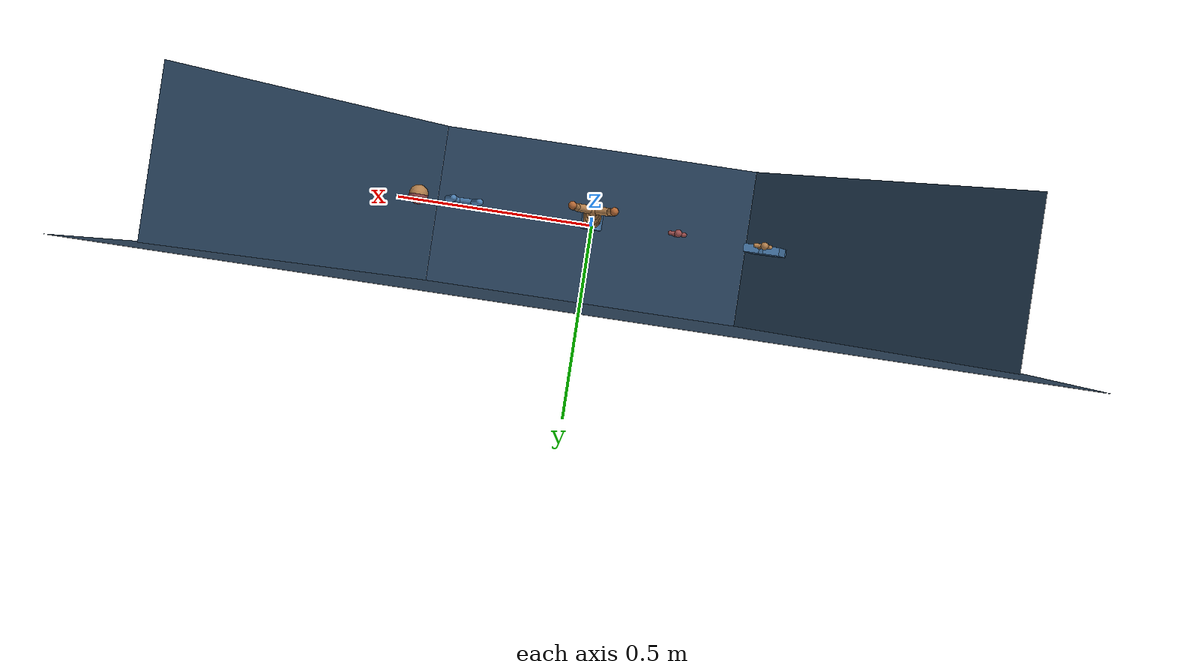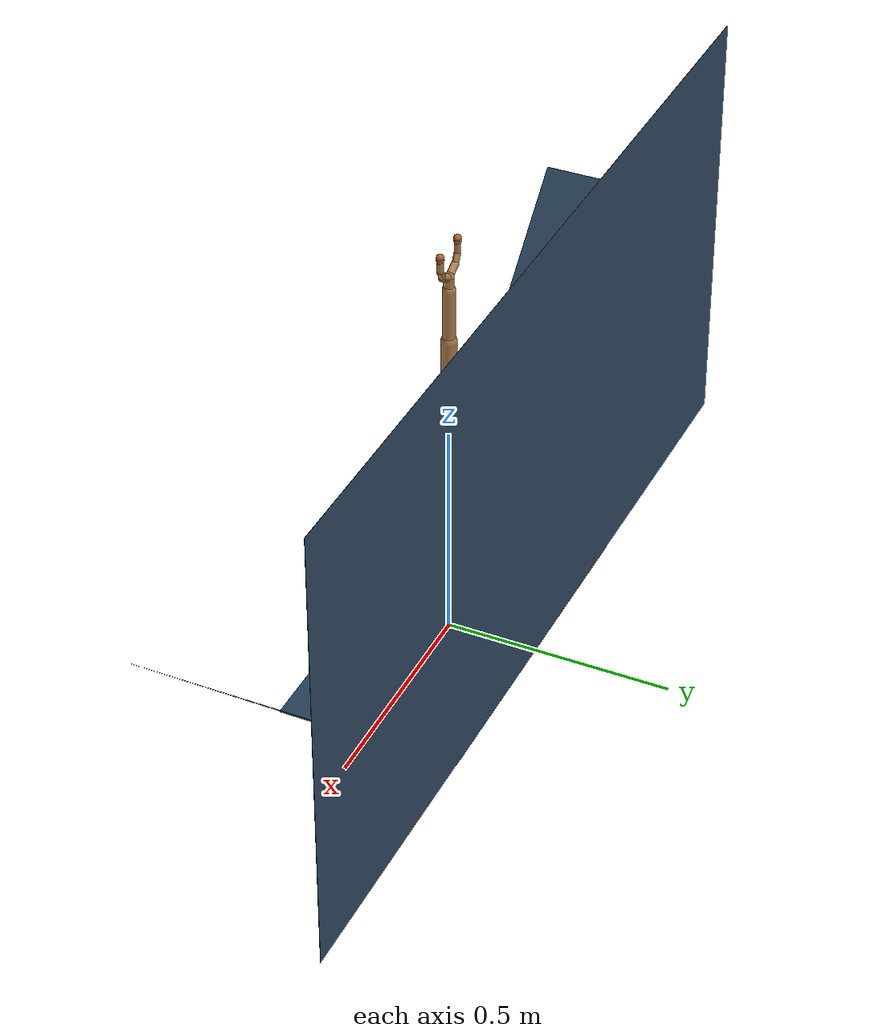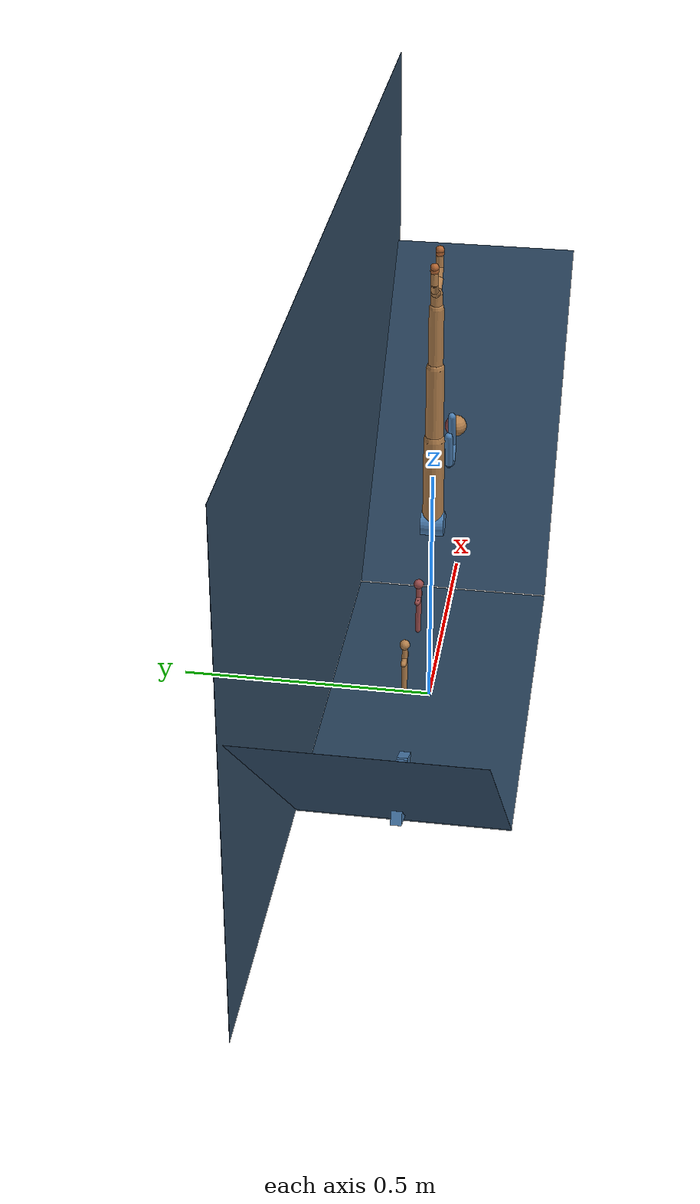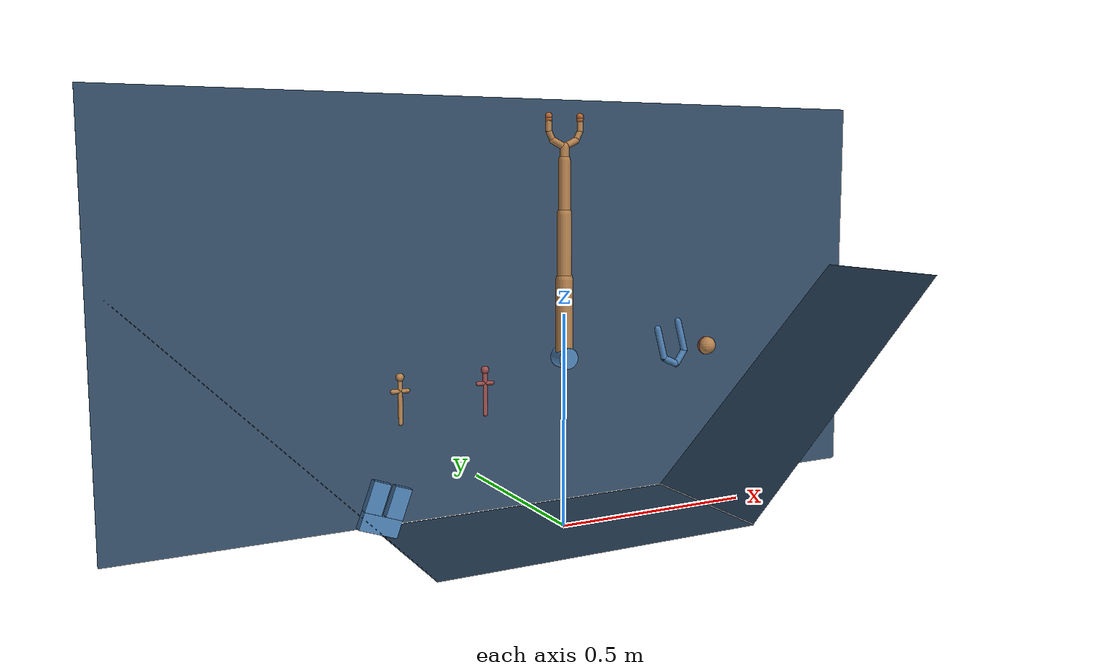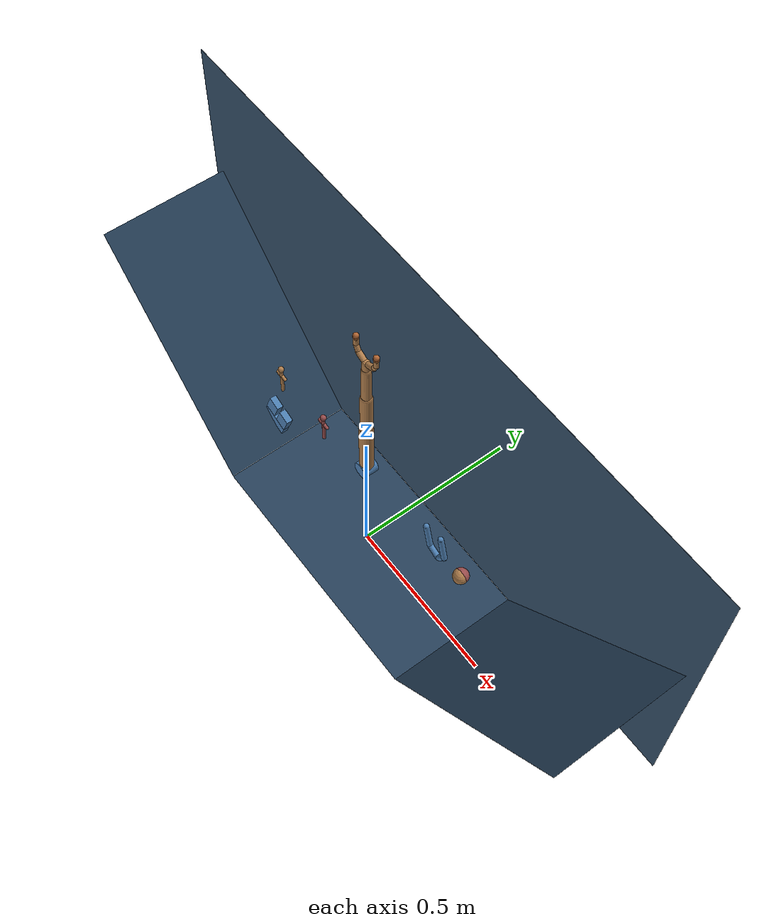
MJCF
<mujoco model="planar manipulator">

  <include file="./common/visual.xml"/>
  <include file="./common/skybox.xml"/>
  <include file="./common/materials.xml"/>
  <asset>
    <texture name="background" builtin="flat" type="2d" mark="random" markrgb="1 1 1" width="800" height="800" rgb1=".2 .3 .4"/>
    <material name="background" texture="background" texrepeat="1 1" texuniform="true"/>
  </asset>

  <visual>
    <map shadowclip=".5"/>
    <quality shadowsize="2048"/>
  </visual>>

  <option timestep="0.001" cone="elliptic"/>

  <default>
    <geom friction=".7" solimp="0.9 0.97 0.001" solref=".005 1"/>
    <joint solimplimit="0 0.99 0.01" solreflimit=".005 1"/>
    <general ctrllimited="true"/>
    <tendon width="0.01"/>
    <site size=".003 .003 .003" rgba=".5 .5 .5 .3" group="3"/>

    <default class="arm">
      <geom type="capsule" material="self" density="500"/>
      <joint type="hinge" pos="0 0 0" axis="0 -1 0" limited="true"/>
      <default class="hand">
        <joint damping=".5" range="-10 60"/>
        <geom size=".008"/>
        <site  type="box" size=".018 .005 .005" pos=".022 0 -.002" euler="0 15 0" group="4"/>
        <default class="fingertip">
          <geom type="sphere" size=".008" material="effector"/>
          <joint damping=".01" stiffness=".01" range="-40 20"/>
          <site  size=".012 .005 .008" pos=".003 0 .003" group="4" euler="0 0 0"/>
        </default>
      </default>
    </default>

    <default class="object">
      <geom material="self"/>
    </default>

    <default class="task">
      <site rgba="0 0 0 0"/>
    </default>

    <default class="obstacle">
      <geom material="decoration" friction="0"/>
    </default>

    <default class="ghost">
      <geom material="target" contype="0" conaffinity="0"/>
    </default>
  </default>

  <worldbody>
    <!-- Arena -->
    <light name="light" directional="true" diffuse=".6 .6 .6" pos="0 0 1" specular=".3 .3 .3"/>
    <geom name="floor" type="plane" pos="0 0 0" size=".4 .2 10" material="grid"/>
    <geom name="wall1" type="plane" pos="-.682843 0 .282843" size=".4 .2 10" material="grid" zaxis="1 0 1"/>
    <geom name="wall2" type="plane" pos=".682843 0 .282843" size=".4 .2 10" material="grid" zaxis="-1 0 1"/>
    <geom name="background" type="plane" pos="0 .2 .5" size="1 .5 10" material="background" zaxis="0 -1 0"/>
    <camera name="fixed" pos="0 -16 .4" xyaxes="1 0 0 0 0 1" fovy="4"/>

    <!-- Arm -->
    <geom name="arm_root" type="cylinder" fromto="0 -.022 .4 0 .022 .4" size=".024"
          material="decoration" contype="0" conaffinity="0"/>
    <body name="upper_arm" pos="0 0 .4" childclass="arm">
      <joint name="arm_root" damping="2" limited="false"/>
      <geom  name="upper_arm"  size=".02" fromto="0 0 0 0 0 .18"/>
      <body  name="middle_arm" pos="0 0 .18" childclass="arm">
        <joint name="arm_shoulder" damping="1.5" range="-160 160"/>
        <geom  name="middle_arm"  size=".017" fromto="0 0 0 0 0 .15"/>
        <body  name="lower_arm" pos="0 0 .15">
          <joint name="arm_elbow" damping="1" range="-160 160"/>
          <geom  name="lower_arm" size=".014" fromto="0 0 0 0 0 .12"/>
          <body  name="hand" pos="0 0 .12">
            <joint name="arm_wrist" damping=".5" range="-140 140" />
            <geom  name="hand" size=".011" fromto="0 0 0 0 0 .03"/>
            <geom  name="palm1"  fromto="0 0 .03  .03 0 .045" class="hand"/>
            <geom  name="palm2"  fromto="0 0 .03 -.03 0 .045" class="hand"/>
            <site  name="grasp" pos="0 0 .065"/>
            <body  name="pinch site" pos="0 0 .090">
              <site  name="pinch"/>
              <inertial pos="0 0 0" mass="1e-6" diaginertia="1e-12 1e-12 1e-12"/>
              <camera name="hand" pos="0 -.3 0" xyaxes="1 0 0 0 0 1" mode="track"/>
            </body>
            <site  name="palm_touch" type="box" group="4" size=".025 .005 .008" pos="0 0 .043"/>

            <body name="thumb" pos=".03 0 .045" euler="0 -90 0" childclass="hand">
              <joint name="thumb"/>
              <geom  name="thumb1"  fromto="0 0 0 .02 0 -.01" size=".007"/>
              <geom  name="thumb2"  fromto=".02 0 -.01 .04 0 -.01" size=".007"/>
              <site  name="thumb_touch" group="4"/>
              <body  name="thumbtip" pos=".05 0 -.01" childclass="fingertip">
                <joint name="thumbtip"/>
                <geom  name="thumbtip1" pos="-.003 0 0" />
                <geom  name="thumbtip2" pos=".003 0 0" />
                <site  name="thumbtip_touch" group="4"/>
              </body>
            </body>

            <body name="finger" pos="-.03 0 .045" euler="0 90 180" childclass="hand">
              <joint name="finger"/>
              <geom  name="finger1"  fromto="0 0 0 .02 0 -.01" size=".007" />
              <geom  name="finger2"  fromto=".02 0 -.01 .04 0 -.01" size=".007"/>
              <site  name="finger_touch"/>
              <body  name="fingertip" pos=".05 0 -.01" childclass="fingertip">
                <joint name="fingertip"/>
                <geom  name="fingertip1" pos="-.003 0 0" />
                <geom  name="fingertip2" pos=".003 0 0" />
                <site  name="fingertip_touch"/>
              </body>
            </body>
          </body>
        </body>
      </body>
    </body>

    <!-- props -->
    <body name="ball" pos=".4 0 .4" childclass="object">
      <joint name="ball_x" type="slide" axis="1 0 0" ref=".4"/>
      <joint name="ball_z" type="slide" axis="0 0 1" ref=".4"/>
      <joint name="ball_y" type="hinge" axis="0 1 0"/>
      <geom  name="ball" type="sphere" size=".022" />
      <site  name="ball" type="sphere"/>
    </body>

    <body name="peg" pos="-.4 0 .4" childclass="object">
      <joint name="peg_x" type="slide" axis="1 0 0" ref="-.4"/>
      <joint name="peg_z" type="slide" axis="0 0 1" ref=".4"/>
      <joint name="peg_y" type="hinge" axis="0 1 0"/>
      <geom name="blade" type="capsule" size=".005" fromto="0 0 -.013 0 0 -.113"/>
      <geom name="guard" type="capsule" size=".005" fromto="-.017 0 -.043 .017 0 -.043"/>
      <body name="pommel" pos="0 0 -.013">
        <geom name="pommel" type="sphere" size=".009"/>
      </body>
      <site name="peg" type="box" pos="0 0 -.063"/>
      <site name="peg_pinch" type="box" pos="0 0 -.025"/>
      <site name="peg_grasp" type="box" pos="0 0 0"/>
      <site name="peg_tip"   type="box" pos="0 0 -.113"/>
    </body>

    <!-- receptacles -->
    <body name="slot" pos="-.405 0 .2" euler="0 20 0" childclass="obstacle">
      <geom name="slot_0" type="box" pos="-.0252 0 -.083" size=".0198 .01 .035"/>
      <geom name="slot_1" type="box" pos=" .0252 0 -.083" size=".0198 .01 .035"/>
      <geom name="slot_2" type="box" pos="  0   0 -.138" size=".045 .01 .02"/>
      <site name="slot" type="box" pos="0 0 0"/>
      <site name="slot_end" type="box" pos="0 0 -.05"/>
    </body>

    <body name="cup" pos=".3 0 .4" euler="0 -15 0" childclass="obstacle">
      <geom name="cup_0" type="capsule" size=".008" fromto="-.03 0 .06 -.03 0 -.015" />
      <geom name="cup_1" type="capsule" size=".008" fromto="-.03 0 -.015 0 0 -.04" />
      <geom name="cup_2" type="capsule" size=".008" fromto="0 0 -.04 .03 0 -.015" />
      <geom name="cup_3" type="capsule" size=".008" fromto=".03 0 -.015 .03 0 .06" />
      <site name="cup" size=".005"/>
    </body>

    <!-- targets -->
    <body name="target_ball" pos=".4 .001 .4" childclass="ghost">
      <geom  name="target_ball" type="sphere" size=".022" />
      <site  name="target_ball" type="sphere"/>
    </body>

    <body name="target_peg" pos="-.2 .001 .4" childclass="ghost">
      <geom name="target_blade" type="capsule" size=".005" fromto="0 0 -.013 0 0 -.113"/>
      <geom name="target_guard" type="capsule" size=".005" fromto="-.017 0 -.043 .017 0 -.043"/>
      <geom name="target_pommel" type="sphere" size=".009" pos="0 0 -.013"/>
      <site name="target_peg" type="box" pos="0 0 -.063"/>
      <site name="target_peg_pinch" type="box" pos="0 0 -.025"/>
      <site name="target_peg_grasp" type="box" pos="0 0 0"/>
      <site name="target_peg_tip"   type="box" pos="0 0 -.113"/>
    </body>

  </worldbody>

  <tendon>
    <fixed name="grasp">
      <joint joint="thumb"  coef=".5"/>
      <joint joint="finger" coef=".5"/>
    </fixed>
    <fixed name="coupling">
      <joint joint="thumb"  coef="-.5"/>
      <joint joint="finger" coef=".5"/>
    </fixed>
  </tendon>

  <equality>
    <tendon name="coupling" tendon1="coupling" solimp="0.95 0.99 0.001" solref=".005 .5"/>
  </equality>

  <sensor>
    <touch name="palm_touch" site="palm_touch"/>
    <touch name="finger_touch" site="finger_touch"/>
    <touch name="thumb_touch" site="thumb_touch"/>
    <touch name="fingertip_touch" site="fingertip_touch"/>
    <touch name="thumbtip_touch" site="thumbtip_touch"/>
  </sensor>

  <actuator>
    <motor name="root"     joint="arm_root"     ctrlrange="-1 1"  gear="12"/>
    <motor name="shoulder" joint="arm_shoulder" ctrlrange="-1 1"  gear="8"/>
    <motor name="elbow"    joint="arm_elbow"    ctrlrange="-1 1"  gear="4"/>
    <motor name="wrist"    joint="arm_wrist"    ctrlrange="-1 1"  gear="2"/>
    <motor name="grasp"    tendon="grasp"       ctrlrange="-1 1"  gear="2"/>
  </actuator>

</mujoco>

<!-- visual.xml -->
<mujoco>
  <visual>
    <headlight ambient=".4 .4 .4" diffuse=".8 .8 .8" specular="0.1 0.1 0.1"/>
    <map znear=".01"/>
    <quality shadowsize="2048"/>
  </visual>
</mujoco>

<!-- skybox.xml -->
<mujoco>
  <asset>
      <texture name="skybox" type="skybox" builtin="gradient" rgb1=".4 .6 .8" rgb2="0 0 0"
               width="800" height="800" mark="random" markrgb="1 1 1"/>
  </asset>
</mujoco>

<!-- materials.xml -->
<!--
Common textures, colors and materials to be used throughout this suite. Some
materials such as xxx_highlight are activated on occurence of certain events,
for example receiving a positive reward.
-->
<mujoco>
  <asset>
    <texture name="grid" type="2d" builtin="checker" rgb1=".1 .2 .3" rgb2=".2 .3 .4" width="300" height="300" mark="edge" markrgb=".2 .3 .4"/>
    <material name="grid" texture="grid" texrepeat="1 1" texuniform="true" reflectance=".2"/>
    <material name="self" rgba=".7 .5 .3 1"/>
    <material name="self_default" rgba=".7 .5 .3 1"/>
    <material name="self_highlight" rgba="0 .5 .3 1"/>
    <material name="effector" rgba=".7 .4 .2 1"/>
    <material name="effector_default" rgba=".7 .4 .2 1"/>
    <material name="effector_highlight" rgba="0 .5 .3 1"/>
    <material name="decoration" rgba=".3 .5 .7 1"/>
    <material name="eye" rgba="0 .2 1 1"/>
    <material name="target" rgba=".6 .3 .3 1"/>
    <material name="target_default" rgba=".6 .3 .3 1"/>
    <material name="target_highlight" rgba=".6 .3 .3 .4"/>
  </asset>
</mujoco>
